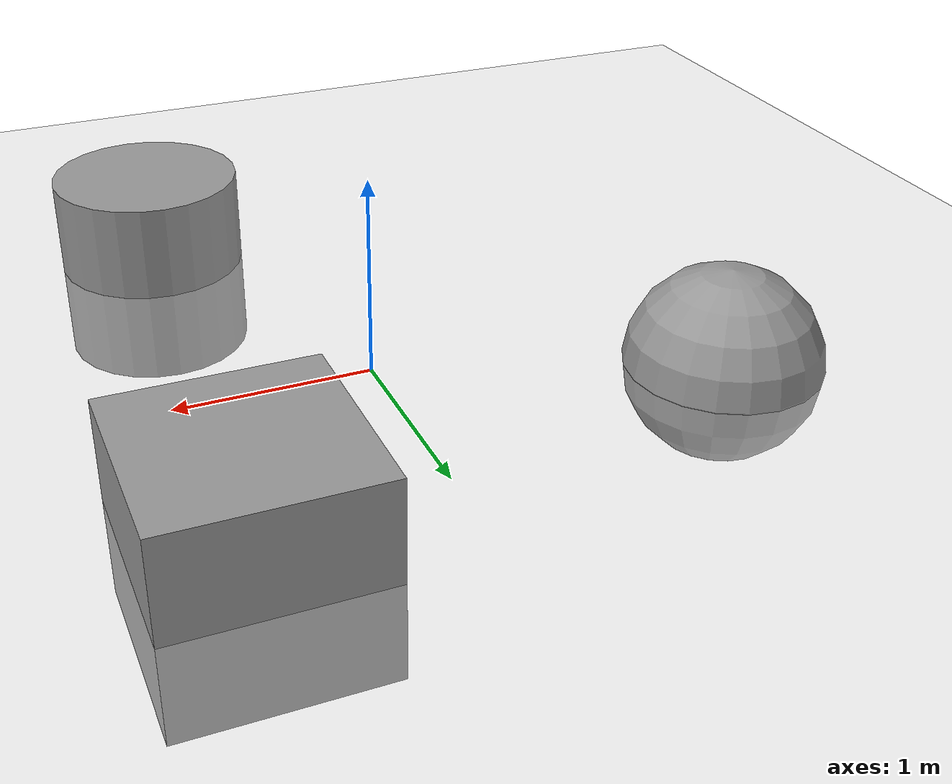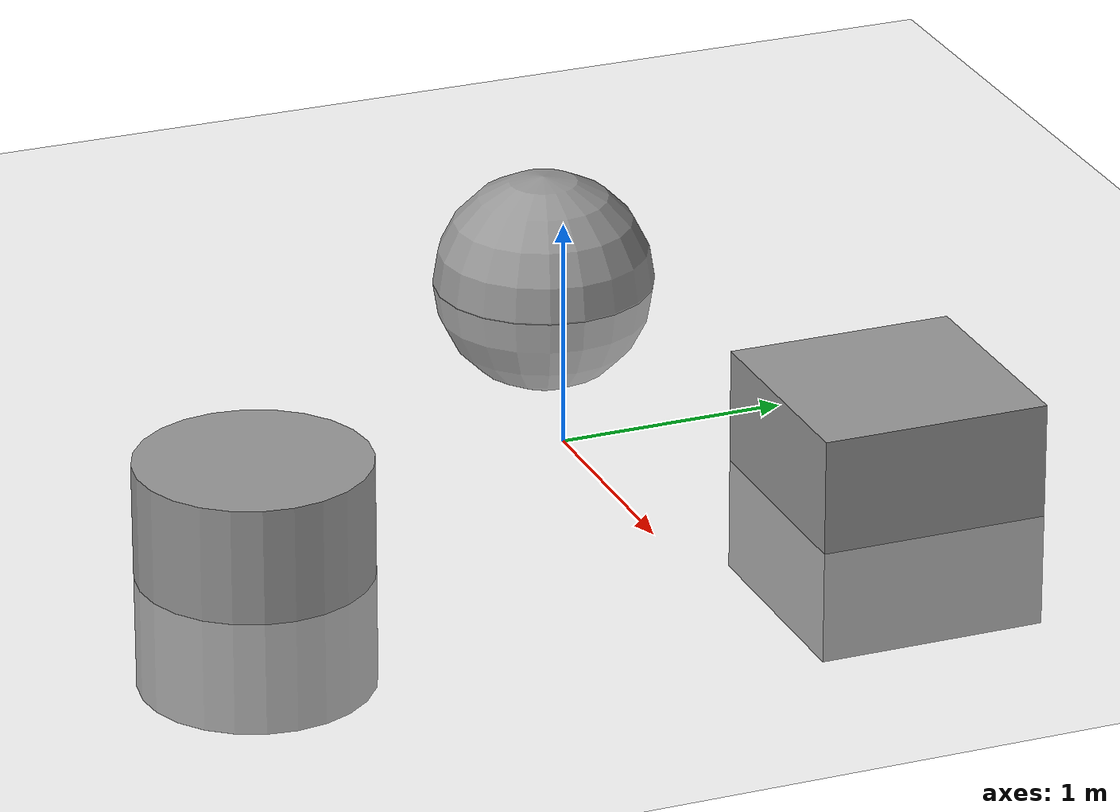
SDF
<?xml version="1.0"?>
<sdf version="1.6">
  <world name="sample">

    <include>
      <uri>model://ground_plane</uri>
    </include>

    <include>
      <uri>model://sun</uri>
    </include>

    <scene>
      <shadows>false</shadows>
    </scene>

    <gui fullscreen='0'>
      <camera name='user_camera'>
        <pose frame=''>0.319654 -0.235002 9.29441 0 1.5138 0.009599</pose>
        <view_controller>orbit</view_controller>
        <projection_type>perspective</projection_type>
      </camera>
    </gui>

    <physics type="ode">
      <real_time_update_rate>1000.0</real_time_update_rate>
      <max_step_size>0.001</max_step_size>
      <real_time_factor>1</real_time_factor>
      <ode>
        <solver>
          <type>quick</type>
          <iters>150</iters>
          <precon_iters>0</precon_iters>
          <sor>1.400000</sor>
          <use_dynamic_moi_rescaling>1</use_dynamic_moi_rescaling>
        </solver>
        <constraints>
          <cfm>0.00001</cfm>
          <erp>0.2</erp>
          <contact_max_correcting_vel>2000.000000</contact_max_correcting_vel>
          <contact_surface_layer>0.01000</contact_surface_layer>
        </constraints>
      </ode>
    </physics>

    <model name="sample">
      <static>1</static>
      <include>
        <uri>model://sample</uri>
      </include>
    </model>

  </world>
</sdf>

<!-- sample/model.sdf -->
<sdf version='1.7'>
  <model name='sample'>
    <link name='link_0'>
      <inertial>
        <mass>1</mass>
        <inertia>
          <ixx>0.145833</ixx>
          <ixy>0</ixy>
          <ixz>0</ixz>
          <iyy>0.145833</iyy>
          <iyz>0</iyz>
          <izz>0.125</izz>
        </inertia>
      </inertial>
      <pose>0.717831 -1.64934 0 0 -0 0</pose>
      <visual name='visual'>
        <pose>0 0 0 0 -0 0</pose>
        <geometry>
          <cylinder>
            <radius>0.5</radius>
            <length>1</length>
          </cylinder>
        </geometry>
        <material>
          <lighting>1</lighting>
          <script>
            <uri>file://media/materials/scripts/gazebo.material</uri>
            <name>Gazebo/Grey</name>
          </script>
          <shader type='pixel'/>
        </material>
        <transparency>0</transparency>
        <cast_shadows>1</cast_shadows>
      </visual>
      <collision name='collision'>
        <laser_retro>0</laser_retro>
        <max_contacts>10</max_contacts>
        <pose>0 0 0 0 -0 0</pose>
        <geometry>
          <cylinder>
            <radius>0.5</radius>
            <length>1</length>
          </cylinder>
        </geometry>
        <surface>
          <friction>
            <ode>
              <mu>1</mu>
              <mu2>1</mu2>
              <fdir1>0 0 0</fdir1>
              <slip1>0</slip1>
              <slip2>0</slip2>
            </ode>
            <torsional>
              <coefficient>1</coefficient>
              <patch_radius>0</patch_radius>
              <surface_radius>0</surface_radius>
              <use_patch_radius>1</use_patch_radius>
              <ode>
                <slip>0</slip>
              </ode>
            </torsional>
          </friction>
          <bounce>
            <restitution_coefficient>0</restitution_coefficient>
            <threshold>1e+06</threshold>
          </bounce>
          <contact>
            <collide_without_contact>0</collide_without_contact>
            <collide_without_contact_bitmask>1</collide_without_contact_bitmask>
            <collide_bitmask>1</collide_bitmask>
            <ode>
              <soft_cfm>0</soft_cfm>
              <soft_erp>0.2</soft_erp>
              <kp>1e+13</kp>
              <kd>1</kd>
              <max_vel>0.01</max_vel>
              <min_depth>0</min_depth>
            </ode>
            <bullet>
              <split_impulse>1</split_impulse>
              <split_impulse_penetration_threshold>-0.01</split_impulse_penetration_threshold>
              <soft_cfm>0</soft_cfm>
              <soft_erp>0.2</soft_erp>
              <kp>1e+13</kp>
              <kd>1</kd>
            </bullet>
          </contact>
        </surface>
      </collision>
    </link>
    <link name='link_1'>
      <inertial>
        <mass>1</mass>
        <inertia>
          <ixx>0.1</ixx>
          <ixy>0</ixy>
          <ixz>0</ixz>
          <iyy>0.1</iyy>
          <iyz>0</iyz>
          <izz>0.1</izz>
        </inertia>
      </inertial>
      <pose>-1.65264 0.564155 0 0 -0 0</pose>
      <visual name='visual'>
        <pose>0 0 0 0 -0 0</pose>
        <geometry>
          <sphere>
            <radius>0.5</radius>
          </sphere>
        </geometry>
        <material>
          <lighting>1</lighting>
          <script>
            <uri>file://media/materials/scripts/gazebo.material</uri>
            <name>Gazebo/Grey</name>
          </script>
          <shader type='pixel'/>
          <emissive>0 0 0 1</emissive>
        </material>
        <transparency>0</transparency>
        <cast_shadows>1</cast_shadows>
      </visual>
      <collision name='collision'>
        <laser_retro>0</laser_retro>
        <max_contacts>10</max_contacts>
        <pose>0 0 0 0 -0 0</pose>
        <geometry>
          <sphere>
            <radius>0.5</radius>
          </sphere>
        </geometry>
        <surface>
          <friction>
            <ode>
              <mu>1</mu>
              <mu2>1</mu2>
              <fdir1>0 0 0</fdir1>
              <slip1>0</slip1>
              <slip2>0</slip2>
            </ode>
            <torsional>
              <coefficient>1</coefficient>
              <patch_radius>0</patch_radius>
              <surface_radius>0</surface_radius>
              <use_patch_radius>1</use_patch_radius>
              <ode>
                <slip>0</slip>
              </ode>
            </torsional>
          </friction>
          <bounce>
            <restitution_coefficient>0</restitution_coefficient>
            <threshold>1e+06</threshold>
          </bounce>
          <contact>
            <collide_without_contact>0</collide_without_contact>
            <collide_without_contact_bitmask>1</collide_without_contact_bitmask>
            <collide_bitmask>1</collide_bitmask>
            <ode>
              <soft_cfm>0</soft_cfm>
              <soft_erp>0.2</soft_erp>
              <kp>1e+13</kp>
              <kd>1</kd>
              <max_vel>0.01</max_vel>
              <min_depth>0</min_depth>
            </ode>
            <bullet>
              <split_impulse>1</split_impulse>
              <split_impulse_penetration_threshold>-0.01</split_impulse_penetration_threshold>
              <soft_cfm>0</soft_cfm>
              <soft_erp>0.2</soft_erp>
              <kp>1e+13</kp>
              <kd>1</kd>
            </bullet>
          </contact>
        </surface>
      </collision>
    </link>
    <link name='link_2'>
      <inertial>
        <mass>1</mass>
        <inertia>
          <ixx>0.166667</ixx>
          <ixy>0</ixy>
          <ixz>0</ixz>
          <iyy>0.166667</iyy>
          <iyz>0</iyz>
          <izz>0.166667</izz>
        </inertia>
      </inertial>
      <pose>0.93481 1.08519 0 0 -0 0</pose>
      <visual name='visual'>
        <pose>0 0 0 0 -0 0</pose>
        <geometry>
          <box>
            <size>1 1 1</size>
          </box>
        </geometry>
        <material>
          <lighting>1</lighting>
          <script>
            <uri>file://media/materials/scripts/gazebo.material</uri>
            <name>Gazebo/Grey</name>
          </script>
          <shader type='pixel'/>
          <emissive>0 0 0 1</emissive>
        </material>
        <transparency>0</transparency>
        <cast_shadows>1</cast_shadows>
      </visual>
      <collision name='collision'>
        <laser_retro>0</laser_retro>
        <max_contacts>10</max_contacts>
        <pose>0 0 0 0 -0 0</pose>
        <geometry>
          <box>
            <size>1 1 1</size>
          </box>
        </geometry>
        <surface>
          <friction>
            <ode>
              <mu>1</mu>
              <mu2>1</mu2>
              <fdir1>0 0 0</fdir1>
              <slip1>0</slip1>
              <slip2>0</slip2>
            </ode>
            <torsional>
              <coefficient>1</coefficient>
              <patch_radius>0</patch_radius>
              <surface_radius>0</surface_radius>
              <use_patch_radius>1</use_patch_radius>
              <ode>
                <slip>0</slip>
              </ode>
            </torsional>
          </friction>
          <bounce>
            <restitution_coefficient>0</restitution_coefficient>
            <threshold>1e+06</threshold>
          </bounce>
          <contact>
            <collide_without_contact>0</collide_without_contact>
            <collide_without_contact_bitmask>1</collide_without_contact_bitmask>
            <collide_bitmask>1</collide_bitmask>
            <ode>
              <soft_cfm>0</soft_cfm>
              <soft_erp>0.2</soft_erp>
              <kp>1e+13</kp>
              <kd>1</kd>
              <max_vel>0.01</max_vel>
              <min_depth>0</min_depth>
            </ode>
            <bullet>
              <split_impulse>1</split_impulse>
              <split_impulse_penetration_threshold>-0.01</split_impulse_penetration_threshold>
              <soft_cfm>0</soft_cfm>
              <soft_erp>0.2</soft_erp>
              <kp>1e+13</kp>
              <kd>1</kd>
            </bullet>
          </contact>
        </surface>
      </collision>
    </link>
    <static>1</static>
    <allow_auto_disable>1</allow_auto_disable>
  </model>
</sdf>
